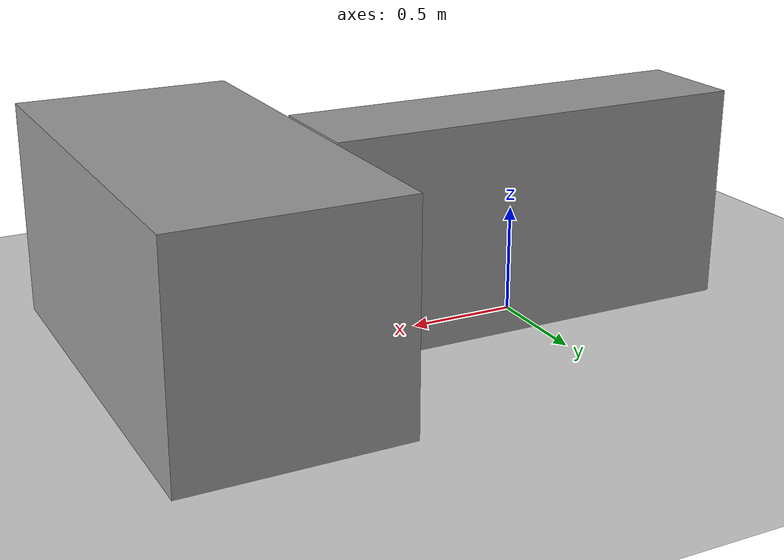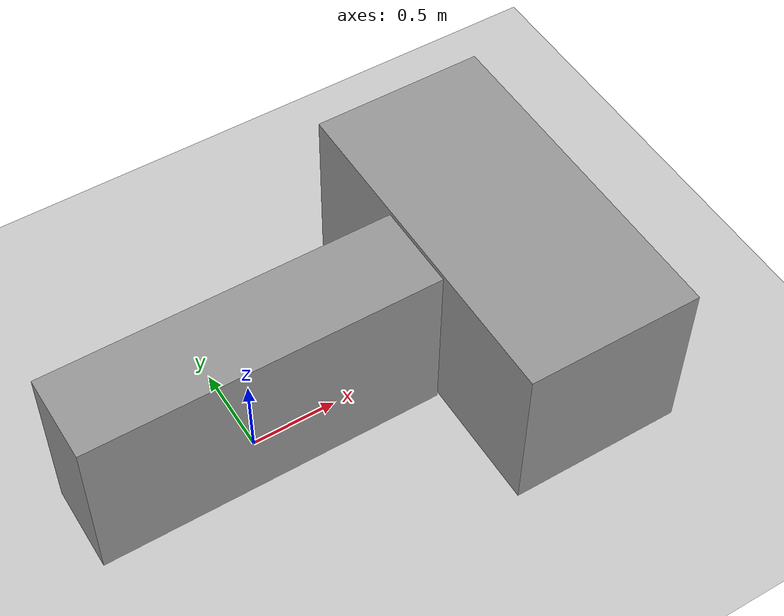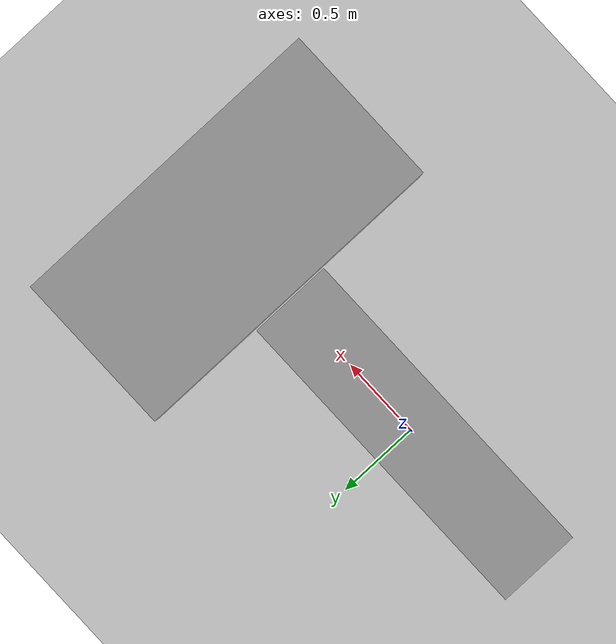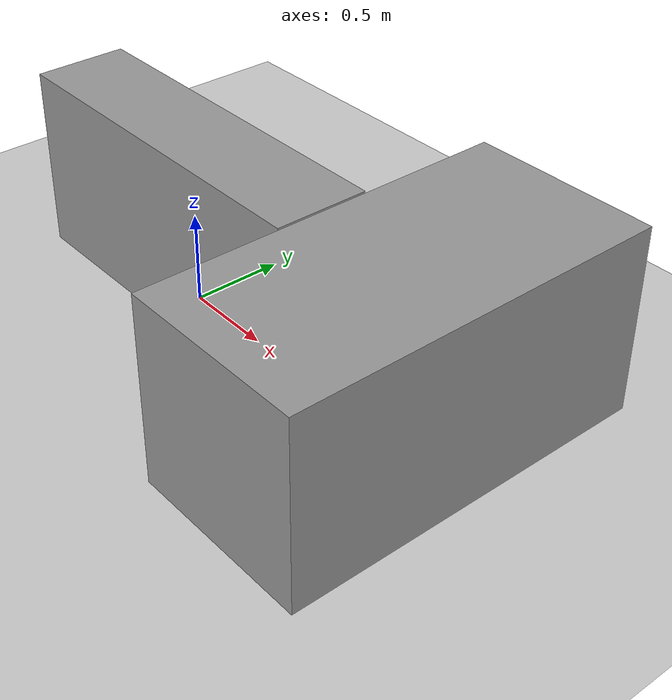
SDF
<sdf version="1.7">
 <world name="default">
  <include><uri>model://sun</uri></include>
  <include><uri>model://ground_plane</uri></include>
  <model name="wall">
   <pose>0 0 0.5 0 -0 0</pose>
   <static>true</static>
   <link name="wall_link">
    <collision name="wall_collision"><geometry><box><size>2 0.5 1</size></box></geometry></collision>
    <visual name="wall_visual">
     <geometry><box><size>2 0.5 1</size></box></geometry>
     <material>
      <script><name>Gazebo/Grey</name><uri>file://media/materials/scripts/gazebo.material</uri></script>
     </material>
    </visual>
   </link>
  </model>
  <model name="unit_box">
   <pose>1.51295 -0.004255 0.499986 -1.4e-05 -0 -0</pose>
   <link name="link">
    <inertial>
     <mass>1</mass>
     <inertia>
      <ixx>0.166667</ixx>
      <ixy>0</ixy>
      <ixz>0</ixz>
      <iyy>0.166667</iyy>
      <iyz>0</iyz>
      <izz>0.166667</izz>
     </inertia>
    </inertial>
    <collision name="collision"><geometry><box><size>1 1.99621 1</size></box></geometry></collision>
    <visual name="visual">
     <geometry><box><size>1 1.99621 1</size></box></geometry>
     <material>
      <script><name>Gazebo/Grey</name><uri>file://media/materials/scripts/gazebo.material</uri></script>
     </material>
    </visual>
   </link>
  </model>
 </world>
</sdf>
